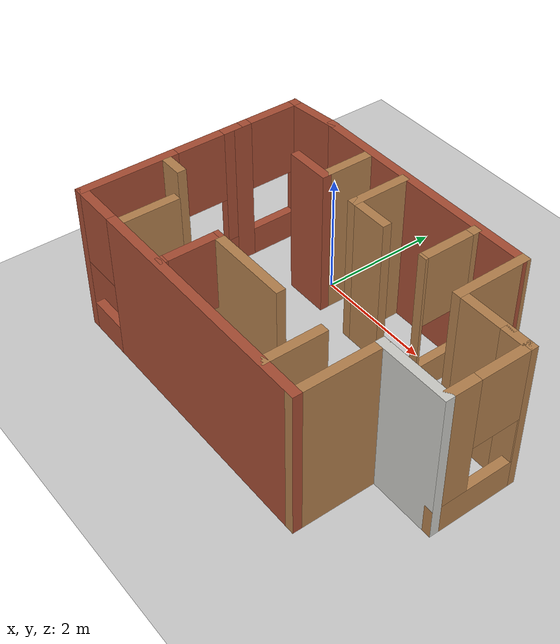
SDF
<sdf version="1.6">
 <world name="default">
  <light name="sun" type="directional">
   <pose>0 0 10 0 -0 0</pose>
   <diffuse>0.8 0.8 0.8 1</diffuse>
   <specular>0.2 0.2 0.2 1</specular>
   <attenuation>
    <range>1000</range>
    <constant>0.9</constant>
    <linear>0.01</linear>
    <quadratic>0.001</quadratic>
   </attenuation>
   <direction>-0.5 0.1 -0.9</direction>
  </light>
  <model name="ground_plane">
   <static>1</static>
   <link name="link">
    <collision name="collision">
     <geometry><plane><normal>0 0 1</normal><size>100 100</size></plane></geometry>
     <surface>
      <contact><collide_bitmask>65535</collide_bitmask></contact>
      <friction><ode><mu>100</mu><mu2>50</mu2></ode></friction>
     </surface>
    </collision>
    <visual name="visual">
     <cast_shadows>0</cast_shadows>
     <geometry><plane><normal>0 0 1</normal><size>100 100</size></plane></geometry>
     <material>
      <script><uri>file://media/materials/scripts/gazebo.material</uri><name>Gazebo/Grey</name></script>
     </material>
    </visual>
   </link>
  </model>
  <gravity>0 0 -9.8</gravity>
  <magnetic_field>6e-06 2.3e-05 -4.2e-05</magnetic_field>
  <atmosphere type="adiabatic"/>
  <physics name="default_physics" default="0" type="ode">
   <max_step_size>0.001</max_step_size>
   <real_time_factor>1</real_time_factor>
   <real_time_update_rate>1000</real_time_update_rate>
  </physics>
  <scene><ambient>0.4 0.4 0.4 1</ambient><background>0.7 0.7 0.7 1</background><shadows>1</shadows></scene>
  <spherical_coordinates>
   <surface_model>EARTH_WGS84</surface_model>
   <latitude_deg>0</latitude_deg>
   <longitude_deg>0</longitude_deg>
   <elevation>0</elevation>
   <heading_deg>0</heading_deg>
  </spherical_coordinates>
  <model name="Office_tb3">
   <pose>1.53122 -1.4399 0 0 -0 0</pose>
   <link name="Wall_10">
    <collision name="Wall_10_Collision">
     <geometry><box><size>1 0.15 2.5</size></box></geometry>
     <pose>0 0 1.25 0 -0 0</pose>
    </collision>
    <visual name="Wall_10_Visual">
     <pose>0 0 1.25 0 -0 0</pose>
     <geometry><box><size>1 0.15 2.5</size></box></geometry>
     <material>
      <script><uri>file://media/materials/scripts/gazebo.material</uri><name>Gazebo/Wood</name></script>
      <ambient>1 1 1 1</ambient>
     </material>
     <meta><layer>0</layer></meta>
    </visual>
    <pose>2.20378 0.799905 0 0 -0 0</pose>
   </link>
   <link name="Wall_11">
    <collision name="Wall_11_Collision">
     <geometry><box><size>0.5 0.15 2.5</size></box></geometry>
     <pose>0 0 1.25 0 -0 0</pose>
    </collision>
    <visual name="Wall_11_Visual">
     <pose>0 0 1.25 0 -0 0</pose>
     <geometry><box><size>0.5 0.15 2.5</size></box></geometry>
     <material>
      <script><uri>file://media/materials/scripts/gazebo.material</uri><name>Gazebo/Wood</name></script>
      <ambient>1 1 1 1</ambient>
     </material>
     <meta><layer>0</layer></meta>
    </visual>
    <pose>2.80378 0.799905 0 0 -0 0</pose>
   </link>
   <link name="Wall_12">
    <pose>2.97878 0.124905 0 0 0 -1.5708</pose>
    <visual name="Wall_12_Visual_0">
     <pose>-0.688958 0 1.25 0 -0 0</pose>
     <geometry><box><size>0.122084 0.15 2.5</size></box></geometry>
     <material>
      <script><uri>file://media/materials/scripts/gazebo.material</uri><name>Gazebo/Wood</name></script>
      <ambient>1 1 1 1</ambient>
     </material>
     <meta><layer>0</layer></meta>
    </visual>
    <collision name="Wall_12_Collision_0">
     <geometry><box><size>0.122084 0.15 2.5</size></box></geometry>
     <pose>-0.688958 0 1.25 0 -0 0</pose>
    </collision>
    <visual name="Wall_12_Visual_1">
     <pose>0.061042 0 0.25 0 -0 0</pose>
     <geometry><box><size>1.37792 0.15 0.5</size></box></geometry>
     <material>
      <script><uri>file://media/materials/scripts/gazebo.material</uri><name>Gazebo/Wood</name></script>
      <ambient>1 1 1 1</ambient>
     </material>
     <meta><layer>0</layer></meta>
    </visual>
    <collision name="Wall_12_Collision_1">
     <geometry><box><size>1.37792 0.15 0.5</size></box></geometry>
     <pose>0.061042 0 0.25 0 -0 0</pose>
    </collision>
    <visual name="Wall_12_Visual_2">
     <pose>0.461042 0 1.5 0 -0 0</pose>
     <geometry><box><size>0.577916 0.15 2</size></box></geometry>
     <material>
      <script><uri>file://media/materials/scripts/gazebo.material</uri><name>Gazebo/Wood</name></script>
      <ambient>1 1 1 1</ambient>
     </material>
     <meta><layer>0</layer></meta>
    </visual>
    <collision name="Wall_12_Collision_2">
     <geometry><box><size>0.577916 0.15 2</size></box></geometry>
     <pose>0.461042 0 1.5 0 -0 0</pose>
    </collision>
    <visual name="Wall_12_Visual_3">
     <pose>-0.227916 0 1.9 0 -0 0</pose>
     <geometry><box><size>0.8 0.15 1.2</size></box></geometry>
     <material>
      <script><uri>file://media/materials/scripts/gazebo.material</uri><name>Gazebo/Wood</name></script>
      <ambient>1 1 1 1</ambient>
     </material>
     <meta><layer>0</layer></meta>
    </visual>
    <collision name="Wall_12_Collision_3">
     <geometry><box><size>0.8 0.15 1.2</size></box></geometry>
     <pose>-0.227916 0 1.9 0 -0 0</pose>
    </collision>
   </link>
   <link name="Wall_13">
    <collision name="Wall_13_Collision">
     <geometry><box><size>1.25 0.15 2.5</size></box></geometry>
     <pose>0 0 1.25 0 -0 0</pose>
    </collision>
    <visual name="Wall_13_Visual">
     <pose>0 0 1.25 0 -0 0</pose>
     <geometry><box><size>1.25 0.15 2.5</size></box></geometry>
     <material>
      <script><uri>file://media/materials/scripts/gazebo.material</uri><name>Gazebo/CeilingTiled</name></script>
      <ambient>1 1 1 1</ambient>
     </material>
     <meta><layer>0</layer></meta>
    </visual>
    <pose>2.42878 -0.550095 0 0 -0 3.14159</pose>
   </link>
   <link name="Wall_15">
    <collision name="Wall_15_Collision">
     <geometry><box><size>1.5 0.15 2.5</size></box></geometry>
     <pose>0 0 1.25 0 -0 0</pose>
    </collision>
    <visual name="Wall_15_Visual">
     <pose>0 0 1.25 0 -0 0</pose>
     <geometry><box><size>1.5 0.15 2.5</size></box></geometry>
     <material>
      <script><uri>file://media/materials/scripts/gazebo.material</uri><name>Gazebo/Wood</name></script>
      <ambient>1 1 1 1</ambient>
     </material>
     <meta><layer>0</layer></meta>
    </visual>
    <pose>1.87878 -1.2251 0 0 0 -1.5708</pose>
   </link>
   <link name="Wall_16">
    <pose>-0.546221 -1.90009 0 0 -0 3.14159</pose>
    <visual name="Wall_16_Visual_0">
     <pose>-0.425102 0 1.25 0 -0 0</pose>
     <geometry><box><size>4.1498 0.15 2.5</size></box></geometry>
     <material>
      <script><uri>file://media/materials/scripts/gazebo.material</uri><name>Gazebo/Bricks</name></script>
      <ambient>1 1 1 1</ambient>
     </material>
     <meta><layer>0</layer></meta>
    </visual>
    <collision name="Wall_16_Collision_0">
     <geometry><box><size>4.1498 0.15 2.5</size></box></geometry>
     <pose>-0.425102 0 1.25 0 -0 0</pose>
    </collision>
    <visual name="Wall_16_Visual_1">
     <pose>2.0749 0 0.25 0 -0 0</pose>
     <geometry><box><size>0.850205 0.15 0.5</size></box></geometry>
     <material>
      <script><uri>file://media/materials/scripts/gazebo.material</uri><name>Gazebo/Bricks</name></script>
      <ambient>1 1 1 1</ambient>
     </material>
     <meta><layer>0</layer></meta>
    </visual>
    <collision name="Wall_16_Collision_1">
     <geometry><box><size>0.850205 0.15 0.5</size></box></geometry>
     <pose>2.0749 0 0.25 0 -0 0</pose>
    </collision>
    <visual name="Wall_16_Visual_2">
     <pose>2.4749 0 1.5 0 -0 0</pose>
     <geometry><box><size>0.050205 0.15 2</size></box></geometry>
     <material>
      <script><uri>file://media/materials/scripts/gazebo.material</uri><name>Gazebo/Bricks</name></script>
      <ambient>1 1 1 1</ambient>
     </material>
     <meta><layer>0</layer></meta>
    </visual>
    <collision name="Wall_16_Collision_2">
     <geometry><box><size>0.050205 0.15 2</size></box></geometry>
     <pose>2.4749 0 1.5 0 -0 0</pose>
    </collision>
    <visual name="Wall_16_Visual_3">
     <pose>2.0498 0 1.9 0 -0 0</pose>
     <geometry><box><size>0.8 0.15 1.2</size></box></geometry>
     <material>
      <script><uri>file://media/materials/scripts/gazebo.material</uri><name>Gazebo/Bricks</name></script>
      <ambient>1 1 1 1</ambient>
     </material>
     <meta><layer>0</layer></meta>
    </visual>
    <collision name="Wall_16_Collision_3">
     <geometry><box><size>0.8 0.15 1.2</size></box></geometry>
     <pose>2.0498 0 1.9 0 -0 0</pose>
    </collision>
   </link>
   <link name="Wall_17">
    <pose>-2.97122 -0.600095 0 0 -0 1.5708</pose>
    <visual name="Wall_17_Visual_0">
     <pose>-0.565416 0 1.25 0 -0 0</pose>
     <geometry><box><size>1.61917 0.15 2.5</size></box></geometry>
     <material>
      <script><uri>file://media/materials/scripts/gazebo.material</uri><name>Gazebo/Bricks</name></script>
      <ambient>1 1 1 1</ambient>
     </material>
     <meta><layer>0</layer></meta>
    </visual>
    <collision name="Wall_17_Collision_0">
     <geometry><box><size>1.61917 0.15 2.5</size></box></geometry>
     <pose>-0.565416 0 1.25 0 -0 0</pose>
    </collision>
    <visual name="Wall_17_Visual_1">
     <pose>0.809584 0 0.25 0 -0 0</pose>
     <geometry><box><size>1.13083 0.15 0.5</size></box></geometry>
     <material>
      <script><uri>file://media/materials/scripts/gazebo.material</uri><name>Gazebo/Bricks</name></script>
      <ambient>1 1 1 1</ambient>
     </material>
     <meta><layer>0</layer></meta>
    </visual>
    <collision name="Wall_17_Collision_1">
     <geometry><box><size>1.13083 0.15 0.5</size></box></geometry>
     <pose>0.809584 0 0.25 0 -0 0</pose>
    </collision>
    <visual name="Wall_17_Visual_2">
     <pose>1.20958 0 1.5 0 -0 0</pose>
     <geometry><box><size>0.330831 0.15 2</size></box></geometry>
     <material>
      <script><uri>file://media/materials/scripts/gazebo.material</uri><name>Gazebo/Bricks</name></script>
      <ambient>1 1 1 1</ambient>
     </material>
     <meta><layer>0</layer></meta>
    </visual>
    <collision name="Wall_17_Collision_2">
     <geometry><box><size>0.330831 0.15 2</size></box></geometry>
     <pose>1.20958 0 1.5 0 -0 0</pose>
    </collision>
    <visual name="Wall_17_Visual_3">
     <pose>0.644169 0 1.9 0 -0 0</pose>
     <geometry><box><size>0.8 0.15 1.2</size></box></geometry>
     <material>
      <script><uri>file://media/materials/scripts/gazebo.material</uri><name>Gazebo/Bricks</name></script>
      <ambient>1 1 1 1</ambient>
     </material>
     <meta><layer>0</layer></meta>
    </visual>
    <collision name="Wall_17_Collision_3">
     <geometry><box><size>0.8 0.15 1.2</size></box></geometry>
     <pose>0.644169 0 1.9 0 -0 0</pose>
    </collision>
   </link>
   <link name="Wall_18">
    <pose>-2.97122 1.24991 0 0 -0 1.5708</pose>
    <visual name="Wall_18_Visual_0">
     <pose>-0.469334 0 1.25 0 -0 0</pose>
     <geometry><box><size>0.311331 0.15 2.5</size></box></geometry>
     <material>
      <script><uri>file://media/materials/scripts/gazebo.material</uri><name>Gazebo/Bricks</name></script>
      <ambient>1 1 1 1</ambient>
     </material>
     <meta><layer>0</layer></meta>
    </visual>
    <collision name="Wall_18_Collision_0">
     <geometry><box><size>0.311331 0.15 2.5</size></box></geometry>
     <pose>-0.469334 0 1.25 0 -0 0</pose>
    </collision>
    <visual name="Wall_18_Visual_1">
     <pose>0.155666 0 0.25 0 -0 0</pose>
     <geometry><box><size>0.938669 0.15 0.5</size></box></geometry>
     <material>
      <script><uri>file://media/materials/scripts/gazebo.material</uri><name>Gazebo/Bricks</name></script>
      <ambient>1 1 1 1</ambient>
     </material>
     <meta><layer>0</layer></meta>
    </visual>
    <collision name="Wall_18_Collision_1">
     <geometry><box><size>0.938669 0.15 0.5</size></box></geometry>
     <pose>0.155666 0 0.25 0 -0 0</pose>
    </collision>
    <visual name="Wall_18_Visual_2">
     <pose>0.555666 0 1.5 0 -0 0</pose>
     <geometry><box><size>0.138669 0.15 2</size></box></geometry>
     <material>
      <script><uri>file://media/materials/scripts/gazebo.material</uri><name>Gazebo/Bricks</name></script>
      <ambient>1 1 1 1</ambient>
     </material>
     <meta><layer>0</layer></meta>
    </visual>
    <collision name="Wall_18_Collision_2">
     <geometry><box><size>0.138669 0.15 2</size></box></geometry>
     <pose>0.555666 0 1.5 0 -0 0</pose>
    </collision>
    <visual name="Wall_18_Visual_3">
     <pose>0.086331 0 1.9 0 -0 0</pose>
     <geometry><box><size>0.8 0.15 1.2</size></box></geometry>
     <material>
      <script><uri>file://media/materials/scripts/gazebo.material</uri><name>Gazebo/Bricks</name></script>
      <ambient>1 1 1 1</ambient>
     </material>
     <meta><layer>0</layer></meta>
    </visual>
    <collision name="Wall_18_Collision_3">
     <geometry><box><size>0.8 0.15 1.2</size></box></geometry>
     <pose>0.086331 0 1.9 0 -0 0</pose>
    </collision>
   </link>
   <link name="Wall_19">
    <collision name="Wall_19_Collision">
     <geometry><box><size>0.964962 0.15 2.5</size></box></geometry>
     <pose>0 0 1.25 0 -0 0</pose>
    </collision>
    <visual name="Wall_19_Visual">
     <pose>0 0 1.25 0 -0 0</pose>
     <geometry><box><size>0.964962 0.15 2.5</size></box></geometry>
     <material>
      <script><uri>file://media/materials/scripts/gazebo.material</uri><name>Gazebo/Bricks</name></script>
      <ambient>1 1 1 1</ambient>
     </material>
     <meta><layer>0</layer></meta>
    </visual>
    <pose>-2.56597 1.84493 0 0 -0 0.110657</pose>
   </link>
   <link name="Wall_21">
    <collision name="Wall_21_Collision">
     <geometry><box><size>0.5 0.15 2.5</size></box></geometry>
     <pose>0 0 1.25 0 -0 0</pose>
    </collision>
    <visual name="Wall_21_Visual">
     <pose>0 0 1.25 0 -0 0</pose>
     <geometry><box><size>0.5 0.15 2.5</size></box></geometry>
     <material>
      <script><uri>file://media/materials/scripts/gazebo.material</uri><name>Gazebo/Wood</name></script>
      <ambient>1 1 1 1</ambient>
     </material>
     <meta><layer>0</layer></meta>
    </visual>
    <pose>-2.75725 -0.555955 0 0 -0 0</pose>
   </link>
   <link name="Wall_23">
    <collision name="Wall_23_Collision">
     <geometry><box><size>1 0.15 2.5</size></box></geometry>
     <pose>0 0 1.25 0 -0 0</pose>
    </collision>
    <visual name="Wall_23_Visual">
     <pose>0 0 1.25 0 -0 0</pose>
     <geometry><box><size>1 0.15 2.5</size></box></geometry>
     <material>
      <script><uri>file://media/materials/scripts/gazebo.material</uri><name>Gazebo/Wood</name></script>
      <ambient>1 1 1 1</ambient>
     </material>
     <meta><layer>0</layer></meta>
    </visual>
    <pose>-2.05775 -1.42522 0 0 -0 1.5708</pose>
   </link>
   <link name="Wall_28">
    <collision name="Wall_28_Collision">
     <geometry><box><size>1 0.15 2.5</size></box></geometry>
     <pose>0 0 1.25 0 -0 0</pose>
    </collision>
    <visual name="Wall_28_Visual">
     <pose>0 0 1.25 0 -0 0</pose>
     <geometry><box><size>1 0.15 2.5</size></box></geometry>
     <material>
      <script><uri>file://media/materials/scripts/gazebo.material</uri><name>Gazebo/Wood</name></script>
      <ambient>1 1 1 1</ambient>
     </material>
     <meta><layer>0</layer></meta>
    </visual>
    <pose>-1.23755 1.42711 0 0 0 -1.5708</pose>
   </link>
   <link name="Wall_37">
    <collision name="Wall_37_Collision">
     <geometry><box><size>1 0.15 2.5</size></box></geometry>
     <pose>0 0 1.25 0 -0 0</pose>
    </collision>
    <visual name="Wall_37_Visual">
     <pose>0 0 1.25 0 -0 0</pose>
     <geometry><box><size>1 0.15 2.5</size></box></geometry>
     <material>
      <script><uri>file://media/materials/scripts/gazebo.material</uri><name>Gazebo/Wood</name></script>
      <ambient>1 1 1 1</ambient>
     </material>
     <meta><layer>0</layer></meta>
    </visual>
    <pose>-0.483646 1.3802 0 0 0 -1.5708</pose>
   </link>
   <link name="Wall_40">
    <collision name="Wall_40_Collision">
     <geometry><box><size>0.75 0.15 2.5</size></box></geometry>
     <pose>0 0 1.25 0 -0 0</pose>
    </collision>
    <visual name="Wall_40_Visual">
     <pose>0 0 1.25 0 -0 0</pose>
     <geometry><box><size>0.75 0.15 2.5</size></box></geometry>
     <material>
      <script><uri>file://media/materials/scripts/gazebo.material</uri><name>Gazebo/Wood</name></script>
      <ambient>1 1 1 1</ambient>
     </material>
     <meta><layer>0</layer></meta>
    </visual>
    <pose>-0.183646 0.955204 0 0 -0 0</pose>
   </link>
   <link name="Wall_42">
    <pose>0.968029 1.3802 0 0 0 -1.5708</pose>
    <visual name="Wall_42_Visual_0">
     <pose>-0.422863 0 1.25 0 -0 0</pose>
     <geometry><box><size>0.154274 0.15 2.5</size></box></geometry>
     <material>
      <script><uri>file://media/materials/scripts/gazebo.material</uri><name>Gazebo/Wood</name></script>
      <ambient>1 1 1 1</ambient>
     </material>
     <meta><layer>0</layer></meta>
    </visual>
    <collision name="Wall_42_Collision_0">
     <geometry><box><size>0.154274 0.15 2.5</size></box></geometry>
     <pose>-0.422863 0 1.25 0 -0 0</pose>
    </collision>
    <visual name="Wall_42_Visual_1">
     <pose>0.077137 0 0.25 0 -0 0</pose>
     <geometry><box><size>0.845726 0.15 0.5</size></box></geometry>
     <material>
      <script><uri>file://media/materials/scripts/gazebo.material</uri><name>Gazebo/Wood</name></script>
      <ambient>1 1 1 1</ambient>
     </material>
     <meta><layer>0</layer></meta>
    </visual>
    <collision name="Wall_42_Collision_1">
     <geometry><box><size>0.845726 0.15 0.5</size></box></geometry>
     <pose>0.077137 0 0.25 0 -0 0</pose>
    </collision>
    <visual name="Wall_42_Visual_2">
     <pose>0.477137 0 1.5 0 -0 0</pose>
     <geometry><box><size>0.045726 0.15 2</size></box></geometry>
     <material>
      <script><uri>file://media/materials/scripts/gazebo.material</uri><name>Gazebo/Wood</name></script>
      <ambient>1 1 1 1</ambient>
     </material>
     <meta><layer>0</layer></meta>
    </visual>
    <collision name="Wall_42_Collision_2">
     <geometry><box><size>0.045726 0.15 2</size></box></geometry>
     <pose>0.477137 0 1.5 0 -0 0</pose>
    </collision>
    <visual name="Wall_42_Visual_3">
     <pose>0.054274 0 1.9 0 -0 0</pose>
     <geometry><box><size>0.8 0.15 1.2</size></box></geometry>
     <material>
      <script><uri>file://media/materials/scripts/gazebo.material</uri><name>Gazebo/Wood</name></script>
      <ambient>1 1 1 1</ambient>
     </material>
     <meta><layer>0</layer></meta>
    </visual>
    <collision name="Wall_42_Collision_3">
     <geometry><box><size>0.8 0.15 1.2</size></box></geometry>
     <pose>0.054274 0 1.9 0 -0 0</pose>
    </collision>
   </link>
   <link name="Wall_44">
    <pose>-1.02584 -1.40072 0 0 0 -1.5708</pose>
    <visual name="Wall_44_Visual_0">
     <pose>-0.457704 0 1.25 0 -0 0</pose>
     <geometry><box><size>0.084593 0.15 2.5</size></box></geometry>
     <material>
      <script><uri>file://media/materials/scripts/gazebo.material</uri><name>Gazebo/Bricks</name></script>
      <ambient>1 1 1 1</ambient>
     </material>
     <meta><layer>0</layer></meta>
    </visual>
    <collision name="Wall_44_Collision_0">
     <geometry><box><size>0.084593 0.15 2.5</size></box></geometry>
     <pose>-0.457704 0 1.25 0 -0 0</pose>
    </collision>
    <visual name="Wall_44_Visual_1">
     <pose>0.042296 0 0.25 0 -0 0</pose>
     <geometry><box><size>0.915407 0.15 0.5</size></box></geometry>
     <material>
      <script><uri>file://media/materials/scripts/gazebo.material</uri><name>Gazebo/Bricks</name></script>
      <ambient>1 1 1 1</ambient>
     </material>
     <meta><layer>0</layer></meta>
    </visual>
    <collision name="Wall_44_Collision_1">
     <geometry><box><size>0.915407 0.15 0.5</size></box></geometry>
     <pose>0.042296 0 0.25 0 -0 0</pose>
    </collision>
    <visual name="Wall_44_Visual_2">
     <pose>0.442296 0 1.5 0 -0 0</pose>
     <geometry><box><size>0.115407 0.15 2</size></box></geometry>
     <material>
      <script><uri>file://media/materials/scripts/gazebo.material</uri><name>Gazebo/Bricks</name></script>
      <ambient>1 1 1 1</ambient>
     </material>
     <meta><layer>0</layer></meta>
    </visual>
    <collision name="Wall_44_Collision_2">
     <geometry><box><size>0.115407 0.15 2</size></box></geometry>
     <pose>0.442296 0 1.5 0 -0 0</pose>
    </collision>
    <visual name="Wall_44_Visual_3">
     <pose>-0.015407 0 1.9 0 -0 0</pose>
     <geometry><box><size>0.8 0.15 1.2</size></box></geometry>
     <material>
      <script><uri>file://media/materials/scripts/gazebo.material</uri><name>Gazebo/Bricks</name></script>
      <ambient>1 1 1 1</ambient>
     </material>
     <meta><layer>0</layer></meta>
    </visual>
    <collision name="Wall_44_Collision_3">
     <geometry><box><size>0.8 0.15 1.2</size></box></geometry>
     <pose>-0.015407 0 1.9 0 -0 0</pose>
    </collision>
   </link>
   <link name="Wall_46">
    <collision name="Wall_46_Collision">
     <geometry><box><size>1.5 0.15 2.5</size></box></geometry>
     <pose>0 0 1.25 0 -0 0</pose>
    </collision>
    <visual name="Wall_46_Visual">
     <pose>0 0 1.25 0 -0 0</pose>
     <geometry><box><size>1.5 0.15 2.5</size></box></geometry>
     <material>
      <script><uri>file://media/materials/scripts/gazebo.material</uri><name>Gazebo/Wood</name></script>
      <ambient>1 1 1 1</ambient>
     </material>
     <meta><layer>0</layer></meta>
    </visual>
    <pose>-0.350838 -0.975716 0 0 -0 0</pose>
   </link>
   <link name="Wall_48">
    <collision name="Wall_48_Collision">
     <geometry><box><size>1 0.15 2.5</size></box></geometry>
     <pose>0 0 1.25 0 -0 0</pose>
    </collision>
    <visual name="Wall_48_Visual">
     <pose>0 0 1.25 0 -0 0</pose>
     <geometry><box><size>1 0.15 2.5</size></box></geometry>
     <material>
      <script><uri>file://media/materials/scripts/gazebo.material</uri><name>Gazebo/Wood</name></script>
      <ambient>1 1 1 1</ambient>
     </material>
     <meta><layer>0</layer></meta>
    </visual>
    <pose>1.24787 -1.44271 0 0 -0 1.5708</pose>
   </link>
   <link name="Wall_52">
    <collision name="Wall_52_Collision">
     <geometry><box><size>0.75 0.15 2.5</size></box></geometry>
     <pose>0 0 1.25 0 -0 0</pose>
    </collision>
    <visual name="Wall_52_Visual">
     <pose>0 0 1.25 0 -0 0</pose>
     <geometry><box><size>0.75 0.15 2.5</size></box></geometry>
     <material>
      <script><uri>file://media/materials/scripts/gazebo.material</uri><name>Gazebo/Bricks</name></script>
      <ambient>1 1 1 1</ambient>
     </material>
     <meta><layer>0</layer></meta>
    </visual>
    <pose>-1.53755 1.00211 0 0 -0 3.14159</pose>
   </link>
   <link name="Wall_7">
    <collision name="Wall_7_Collision">
     <geometry><box><size>4.08952 0.15 2.5</size></box></geometry>
     <pose>0 0 1.25 0 -0 0</pose>
    </collision>
    <visual name="Wall_7_Visual">
     <pose>0 0 1.25 0 -0 0</pose>
     <geometry><box><size>4.08952 0.15 2.5</size></box></geometry>
     <material>
      <script><uri>file://media/materials/scripts/gazebo.material</uri><name>Gazebo/Bricks</name></script>
      <ambient>1 1 1 1</ambient>
     </material>
     <meta><layer>0</layer></meta>
    </visual>
    <pose>-0.190967 1.89493 0 0 -0 0.002524</pose>
   </link>
   <link name="Wall_9">
    <collision name="Wall_9_Collision">
     <geometry><box><size>1.25 0.15 2.5</size></box></geometry>
     <pose>0 0 1.25 0 -0 0</pose>
    </collision>
    <visual name="Wall_9_Visual">
     <pose>0 0 1.25 0 -0 0</pose>
     <geometry><box><size>1.25 0.15 2.5</size></box></geometry>
     <material>
      <script><uri>file://media/materials/scripts/gazebo.material</uri><name>Gazebo/Wood</name></script>
      <ambient>1 1 1 1</ambient>
     </material>
     <meta><layer>0</layer></meta>
    </visual>
    <pose>1.77878 1.3499 0 0 0 -1.5708</pose>
   </link>
   <static>1</static>
  </model>
  <audio><device>default</device></audio>
 </world>
</sdf>
